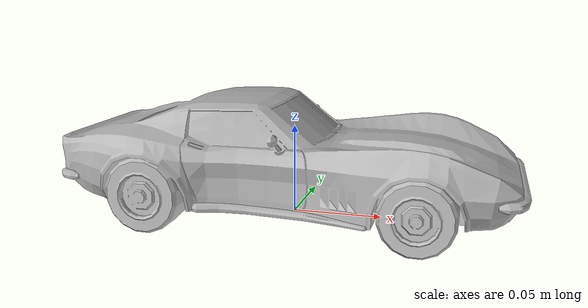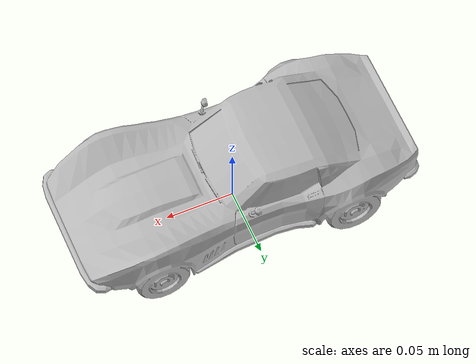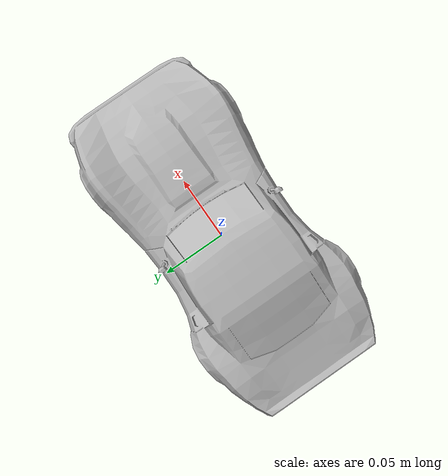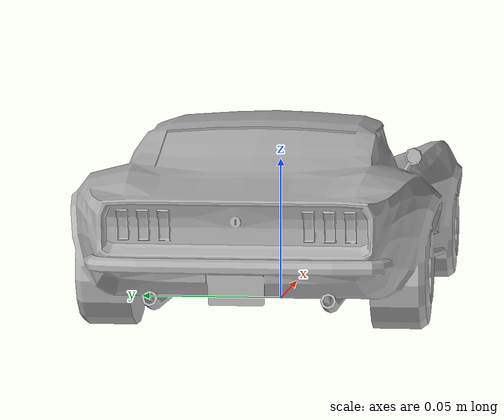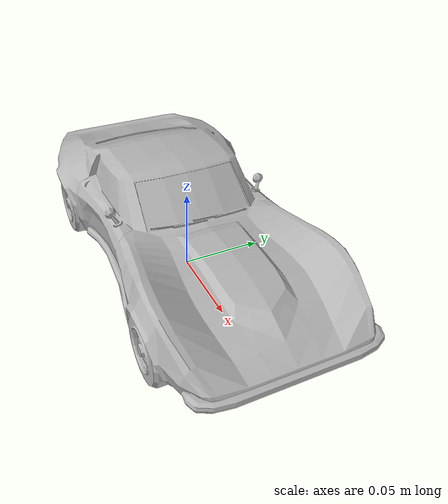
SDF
<?xml version="1.0"?>
<sdf version="1.8">
    <model name="muscle_car">
        <static>true</static>
        <link name="muscle_car_link">
            <collision name="collision">
                <geometry>
                    <mesh>
                        <uri>muscle_car.dae</uri>
                        <scale>0.01 0.01 0.01</scale>
                    </mesh>
                </geometry>
            </collision>

            <visual name="visual">
                <geometry>
                    <mesh>
                        <uri>muscle_car.dae</uri>
                        <scale>0.05 0.05 0.05</scale>
                    </mesh>
                </geometry>
            </visual>
        </link>
    </model>
</sdf>
